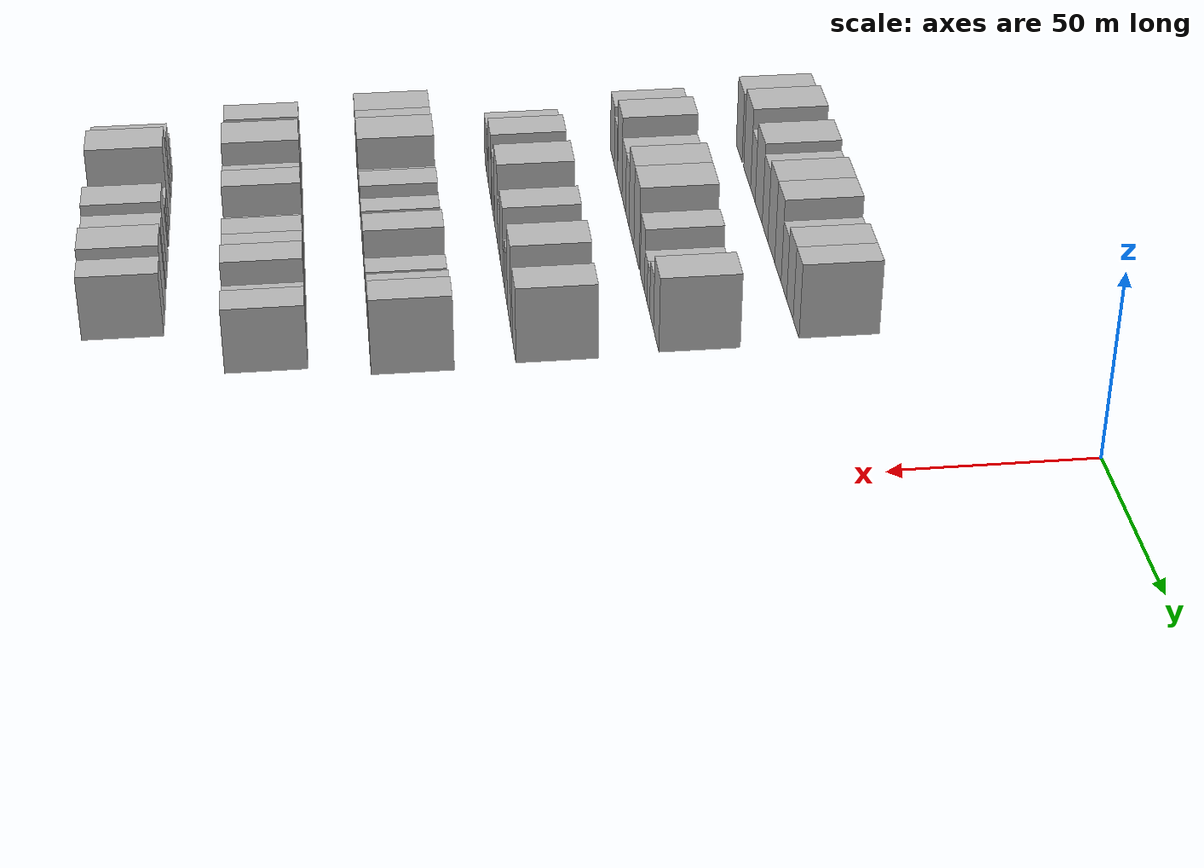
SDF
<sdf version="1.6">
 <world name="default">
  <model name="building_45">
   <static>1</static>
   <pose>50.0000 -151.4031 0 0.000000 0.000000 0.000000</pose>
   <link name="link">
    <pose>0 0 10.50 0 0 0</pose>
    <collision name="collision"><geometry><box><size>20.0000 10.0521 21.0000</size></box></geometry></collision>
    <visual name="visual">
     <cast_shadows>0</cast_shadows>
     <geometry><box><size>20.0000 10.0521 21.0000</size></box></geometry>
     <material>
      <script>
       <uri>model://HANNAS_wall/materials/scripts</uri>
       <uri>model://HANNAS_wall/materials/textures</uri>
       <name>vrc/HANNAS_wall</name>
      </script>
     </material>
    </visual>
   </link>
  </model>
  <model name="building_46">
   <static>1</static>
   <pose>50.0000 -137.5196 0 0.000000 0.000000 0.000000</pose>
   <link name="link">
    <pose>0 0 12.00 0 0 0</pose>
    <collision name="collision"><geometry><box><size>20.0000 11.7151 24.0000</size></box></geometry></collision>
    <visual name="visual">
     <cast_shadows>0</cast_shadows>
     <geometry><box><size>20.0000 11.7151 24.0000</size></box></geometry>
     <material>
      <script>
       <uri>model://HANNAS_wall/materials/scripts</uri>
       <uri>model://HANNAS_wall/materials/textures</uri>
       <name>vrc/HANNAS_wall</name>
      </script>
     </material>
    </visual>
   </link>
  </model>
  <model name="building_47">
   <static>1</static>
   <pose>50.0000 -127.8627 0 0.000000 0.000000 0.000000</pose>
   <link name="link">
    <pose>0 0 9.00 0 0 0</pose>
    <collision name="collision"><geometry><box><size>20.0000 7.5986 18.0000</size></box></geometry></collision>
    <visual name="visual">
     <cast_shadows>0</cast_shadows>
     <geometry><box><size>20.0000 7.5986 18.0000</size></box></geometry>
     <material>
      <script>
       <uri>model://HANNAS_wall/materials/scripts</uri>
       <uri>model://HANNAS_wall/materials/textures</uri>
       <name>vrc/HANNAS_wall</name>
      </script>
     </material>
    </visual>
   </link>
  </model>
  <model name="building_48">
   <static>1</static>
   <pose>50.0000 -118.3057 0 0.000000 0.000000 0.000000</pose>
   <link name="link">
    <pose>0 0 12.00 0 0 0</pose>
    <collision name="collision"><geometry><box><size>20.0000 11.5153 24.0000</size></box></geometry></collision>
    <visual name="visual">
     <cast_shadows>0</cast_shadows>
     <geometry><box><size>20.0000 11.5153 24.0000</size></box></geometry>
     <material>
      <script>
       <uri>model://HANNAS_wall/materials/scripts</uri>
       <uri>model://HANNAS_wall/materials/textures</uri>
       <name>vrc/HANNAS_wall</name>
      </script>
     </material>
    </visual>
   </link>
  </model>
  <model name="building_49">
   <static>1</static>
   <pose>50.0000 -108.0683 0 0.000000 0.000000 0.000000</pose>
   <link name="link">
    <pose>0 0 10.50 0 0 0</pose>
    <collision name="collision"><geometry><box><size>20.0000 8.9596 21.0000</size></box></geometry></collision>
    <visual name="visual">
     <cast_shadows>0</cast_shadows>
     <geometry><box><size>20.0000 8.9596 21.0000</size></box></geometry>
     <material>
      <script>
       <uri>model://HANNAS_wall/materials/scripts</uri>
       <uri>model://HANNAS_wall/materials/textures</uri>
       <name>vrc/HANNAS_wall</name>
      </script>
     </material>
    </visual>
   </link>
  </model>
  <model name="building_50">
   <static>1</static>
   <pose>50.0000 -98.2909 0 0.000000 0.000000 0.000000</pose>
   <link name="link">
    <pose>0 0 12.00 0 0 0</pose>
    <collision name="collision"><geometry><box><size>20.0000 10.5951 24.0000</size></box></geometry></collision>
    <visual name="visual">
     <cast_shadows>0</cast_shadows>
     <geometry><box><size>20.0000 10.5951 24.0000</size></box></geometry>
     <material>
      <script>
       <uri>model://HANNAS_wall/materials/scripts</uri>
       <uri>model://HANNAS_wall/materials/textures</uri>
       <name>vrc/HANNAS_wall</name>
      </script>
     </material>
    </visual>
   </link>
  </model>
  <model name="building_51">
   <static>1</static>
   <pose>50.0000 -88.1303 0 0.000000 0.000000 0.000000</pose>
   <link name="link">
    <pose>0 0 12.00 0 0 0</pose>
    <collision name="collision"><geometry><box><size>20.0000 9.7262 24.0000</size></box></geometry></collision>
    <visual name="visual">
     <cast_shadows>0</cast_shadows>
     <geometry><box><size>20.0000 9.7262 24.0000</size></box></geometry>
     <material>
      <script>
       <uri>model://HANNAS_wall/materials/scripts</uri>
       <uri>model://HANNAS_wall/materials/textures</uri>
       <name>vrc/HANNAS_wall</name>
      </script>
     </material>
    </visual>
   </link>
  </model>
  <model name="building_52">
   <static>1</static>
   <pose>50.0000 -79.1546 0 0.000000 0.000000 0.000000</pose>
   <link name="link">
    <pose>0 0 9.00 0 0 0</pose>
    <collision name="collision"><geometry><box><size>20.0000 8.2252 18.0000</size></box></geometry></collision>
    <visual name="visual">
     <cast_shadows>0</cast_shadows>
     <geometry><box><size>20.0000 8.2252 18.0000</size></box></geometry>
     <material>
      <script>
       <uri>model://HANNAS_wall/materials/scripts</uri>
       <uri>model://HANNAS_wall/materials/textures</uri>
       <name>vrc/HANNAS_wall</name>
      </script>
     </material>
    </visual>
   </link>
  </model>
  <model name="building_53">
   <static>1</static>
   <pose>50.0000 -70.3270 0 0.000000 0.000000 0.000000</pose>
   <link name="link">
    <pose>0 0 10.50 0 0 0</pose>
    <collision name="collision"><geometry><box><size>20.0000 9.4300 21.0000</size></box></geometry></collision>
    <visual name="visual">
     <cast_shadows>0</cast_shadows>
     <geometry><box><size>20.0000 9.4300 21.0000</size></box></geometry>
     <material>
      <script>
       <uri>model://HANNAS_wall/materials/scripts</uri>
       <uri>model://HANNAS_wall/materials/textures</uri>
       <name>vrc/HANNAS_wall</name>
      </script>
     </material>
    </visual>
   </link>
  </model>
  <model name="building_54">
   <static>1</static>
   <pose>50.0000 -61.3829 0 0.000000 0.000000 0.000000</pose>
   <link name="link">
    <pose>0 0 10.50 0 0 0</pose>
    <collision name="collision"><geometry><box><size>20.0000 8.4582 21.0000</size></box></geometry></collision>
    <visual name="visual">
     <cast_shadows>0</cast_shadows>
     <geometry><box><size>20.0000 8.4582 21.0000</size></box></geometry>
     <material>
      <script>
       <uri>model://HANNAS_wall/materials/scripts</uri>
       <uri>model://HANNAS_wall/materials/textures</uri>
       <name>vrc/HANNAS_wall</name>
      </script>
     </material>
    </visual>
   </link>
  </model>
  <model name="building_168">
   <static>1</static>
   <pose>85.0000 -152.6361 0 0.000000 0.000000 0.000000</pose>
   <link name="link">
    <pose>0 0 9.00 0 0 0</pose>
    <collision name="collision"><geometry><box><size>20.0000 8.8853 18.0000</size></box></geometry></collision>
    <visual name="visual">
     <cast_shadows>0</cast_shadows>
     <geometry><box><size>20.0000 8.8853 18.0000</size></box></geometry>
     <material>
      <script>
       <uri>model://HANNAS_wall/materials/scripts</uri>
       <uri>model://HANNAS_wall/materials/textures</uri>
       <name>vrc/HANNAS_wall</name>
      </script>
     </material>
    </visual>
   </link>
  </model>
  <model name="building_169">
   <static>1</static>
   <pose>85.0000 -144.8774 0 0.000000 0.000000 0.000000</pose>
   <link name="link">
    <pose>0 0 7.50 0 0 0</pose>
    <collision name="collision"><geometry><box><size>20.0000 6.6321 15.0000</size></box></geometry></collision>
    <visual name="visual">
     <cast_shadows>0</cast_shadows>
     <geometry><box><size>20.0000 6.6321 15.0000</size></box></geometry>
     <material>
      <script>
       <uri>model://HANNAS_wall/materials/scripts</uri>
       <uri>model://HANNAS_wall/materials/textures</uri>
       <name>vrc/HANNAS_wall</name>
      </script>
     </material>
    </visual>
   </link>
  </model>
  <model name="building_170">
   <static>1</static>
   <pose>85.0000 -135.5276 0 0.000000 0.000000 0.000000</pose>
   <link name="link">
    <pose>0 0 12.00 0 0 0</pose>
    <collision name="collision"><geometry><box><size>20.0000 10.0675 24.0000</size></box></geometry></collision>
    <visual name="visual">
     <cast_shadows>0</cast_shadows>
     <geometry><box><size>20.0000 10.0675 24.0000</size></box></geometry>
     <material>
      <script>
       <uri>model://HANNAS_wall/materials/scripts</uri>
       <uri>model://HANNAS_wall/materials/textures</uri>
       <name>vrc/HANNAS_wall</name>
      </script>
     </material>
    </visual>
   </link>
  </model>
  <model name="building_171">
   <static>1</static>
   <pose>85.0000 -126.3162 0 0.000000 0.000000 0.000000</pose>
   <link name="link">
    <pose>0 0 9.00 0 0 0</pose>
    <collision name="collision"><geometry><box><size>20.0000 8.3554 18.0000</size></box></geometry></collision>
    <visual name="visual">
     <cast_shadows>0</cast_shadows>
     <geometry><box><size>20.0000 8.3554 18.0000</size></box></geometry>
     <material>
      <script>
       <uri>model://HANNAS_wall/materials/scripts</uri>
       <uri>model://HANNAS_wall/materials/textures</uri>
       <name>vrc/HANNAS_wall</name>
      </script>
     </material>
    </visual>
   </link>
  </model>
  <model name="building_172">
   <static>1</static>
   <pose>85.0000 -118.4381 0 0.000000 0.000000 0.000000</pose>
   <link name="link">
    <pose>0 0 9.00 0 0 0</pose>
    <collision name="collision"><geometry><box><size>20.0000 7.4008 18.0000</size></box></geometry></collision>
    <visual name="visual">
     <cast_shadows>0</cast_shadows>
     <geometry><box><size>20.0000 7.4008 18.0000</size></box></geometry>
     <material>
      <script>
       <uri>model://HANNAS_wall/materials/scripts</uri>
       <uri>model://HANNAS_wall/materials/textures</uri>
       <name>vrc/HANNAS_wall</name>
      </script>
     </material>
    </visual>
   </link>
  </model>
  <model name="building_173">
   <static>1</static>
   <pose>85.0000 -109.5974 0 0.000000 0.000000 0.000000</pose>
   <link name="link">
    <pose>0 0 12.00 0 0 0</pose>
    <collision name="collision"><geometry><box><size>20.0000 10.2807 24.0000</size></box></geometry></collision>
    <visual name="visual">
     <cast_shadows>0</cast_shadows>
     <geometry><box><size>20.0000 10.2807 24.0000</size></box></geometry>
     <material>
      <script>
       <uri>model://HANNAS_wall/materials/scripts</uri>
       <uri>model://HANNAS_wall/materials/textures</uri>
       <name>vrc/HANNAS_wall</name>
      </script>
     </material>
    </visual>
   </link>
  </model>
  <model name="building_174">
   <static>1</static>
   <pose>85.0000 -98.7378 0 0.000000 0.000000 0.000000</pose>
   <link name="link">
    <pose>0 0 12.00 0 0 0</pose>
    <collision name="collision"><geometry><box><size>20.0000 11.4384 24.0000</size></box></geometry></collision>
    <visual name="visual">
     <cast_shadows>0</cast_shadows>
     <geometry><box><size>20.0000 11.4384 24.0000</size></box></geometry>
     <material>
      <script>
       <uri>model://HANNAS_wall/materials/scripts</uri>
       <uri>model://HANNAS_wall/materials/textures</uri>
       <name>vrc/HANNAS_wall</name>
      </script>
     </material>
    </visual>
   </link>
  </model>
  <model name="building_175">
   <static>1</static>
   <pose>85.0000 -86.7963 0 0.000000 0.000000 0.000000</pose>
   <link name="link">
    <pose>0 0 9.00 0 0 0</pose>
    <collision name="collision"><geometry><box><size>20.0000 8.4447 18.0000</size></box></geometry></collision>
    <visual name="visual">
     <cast_shadows>0</cast_shadows>
     <geometry><box><size>20.0000 8.4447 18.0000</size></box></geometry>
     <material>
      <script>
       <uri>model://HANNAS_wall/materials/scripts</uri>
       <uri>model://HANNAS_wall/materials/textures</uri>
       <name>vrc/HANNAS_wall</name>
      </script>
     </material>
    </visual>
   </link>
  </model>
  <model name="building_176">
   <static>1</static>
   <pose>85.0000 -79.9591 0 0.000000 0.000000 0.000000</pose>
   <link name="link">
    <pose>0 0 6.00 0 0 0</pose>
    <collision name="collision"><geometry><box><size>20.0000 5.2295 12.0000</size></box></geometry></collision>
    <visual name="visual">
     <cast_shadows>0</cast_shadows>
     <geometry><box><size>20.0000 5.2295 12.0000</size></box></geometry>
     <material>
      <script>
       <uri>model://HANNAS_wall/materials/scripts</uri>
       <uri>model://HANNAS_wall/materials/textures</uri>
       <name>vrc/HANNAS_wall</name>
      </script>
     </material>
    </visual>
   </link>
  </model>
  <model name="building_177">
   <static>1</static>
   <pose>85.0000 -74.8012 0 0.000000 0.000000 0.000000</pose>
   <link name="link">
    <pose>0 0 6.00 0 0 0</pose>
    <collision name="collision"><geometry><box><size>20.0000 5.0864 12.0000</size></box></geometry></collision>
    <visual name="visual">
     <cast_shadows>0</cast_shadows>
     <geometry><box><size>20.0000 5.0864 12.0000</size></box></geometry>
     <material>
      <script>
       <uri>model://HANNAS_wall/materials/scripts</uri>
       <uri>model://HANNAS_wall/materials/textures</uri>
       <name>vrc/HANNAS_wall</name>
      </script>
     </material>
    </visual>
   </link>
  </model>
  <model name="building_178">
   <static>1</static>
   <pose>85.0000 -68.5260 0 0.000000 0.000000 0.000000</pose>
   <link name="link">
    <pose>0 0 7.50 0 0 0</pose>
    <collision name="collision"><geometry><box><size>20.0000 7.4639 15.0000</size></box></geometry></collision>
    <visual name="visual">
     <cast_shadows>0</cast_shadows>
     <geometry><box><size>20.0000 7.4639 15.0000</size></box></geometry>
     <material>
      <script>
       <uri>model://HANNAS_wall/materials/scripts</uri>
       <uri>model://HANNAS_wall/materials/textures</uri>
       <name>vrc/HANNAS_wall</name>
      </script>
     </material>
    </visual>
   </link>
  </model>
  <model name="building_179">
   <static>1</static>
   <pose>85.0000 -59.6368 0 0.000000 0.000000 0.000000</pose>
   <link name="link">
    <pose>0 0 10.50 0 0 0</pose>
    <collision name="collision"><geometry><box><size>20.0000 10.3146 21.0000</size></box></geometry></collision>
    <visual name="visual">
     <cast_shadows>0</cast_shadows>
     <geometry><box><size>20.0000 10.3146 21.0000</size></box></geometry>
     <material>
      <script>
       <uri>model://HANNAS_wall/materials/scripts</uri>
       <uri>model://HANNAS_wall/materials/textures</uri>
       <name>vrc/HANNAS_wall</name>
      </script>
     </material>
    </visual>
   </link>
  </model>
  <model name="building_302">
   <static>1</static>
   <pose>120.0000 -150.2510 0 0.000000 0.000000 0.000000</pose>
   <link name="link">
    <pose>0 0 7.50 0 0 0</pose>
    <collision name="collision"><geometry><box><size>20.0000 7.4345 15.0000</size></box></geometry></collision>
    <visual name="visual">
     <cast_shadows>0</cast_shadows>
     <geometry><box><size>20.0000 7.4345 15.0000</size></box></geometry>
     <material>
      <script>
       <uri>model://HANNAS_wall/materials/scripts</uri>
       <uri>model://HANNAS_wall/materials/textures</uri>
       <name>vrc/HANNAS_wall</name>
      </script>
     </material>
    </visual>
   </link>
  </model>
  <model name="building_303">
   <static>1</static>
   <pose>120.0000 -143.4883 0 0.000000 0.000000 0.000000</pose>
   <link name="link">
    <pose>0 0 7.50 0 0 0</pose>
    <collision name="collision"><geometry><box><size>20.0000 6.0909 15.0000</size></box></geometry></collision>
    <visual name="visual">
     <cast_shadows>0</cast_shadows>
     <geometry><box><size>20.0000 6.0909 15.0000</size></box></geometry>
     <material>
      <script>
       <uri>model://HANNAS_wall/materials/scripts</uri>
       <uri>model://HANNAS_wall/materials/textures</uri>
       <name>vrc/HANNAS_wall</name>
      </script>
     </material>
    </visual>
   </link>
  </model>
  <model name="building_304">
   <static>1</static>
   <pose>120.0000 -134.7921 0 0.000000 0.000000 0.000000</pose>
   <link name="link">
    <pose>0 0 10.50 0 0 0</pose>
    <collision name="collision"><geometry><box><size>20.0000 9.3015 21.0000</size></box></geometry></collision>
    <visual name="visual">
     <cast_shadows>0</cast_shadows>
     <geometry><box><size>20.0000 9.3015 21.0000</size></box></geometry>
     <material>
      <script>
       <uri>model://HANNAS_wall/materials/scripts</uri>
       <uri>model://HANNAS_wall/materials/textures</uri>
       <name>vrc/HANNAS_wall</name>
      </script>
     </material>
    </visual>
   </link>
  </model>
  <model name="building_305">
   <static>1</static>
   <pose>120.0000 -124.3513 0 0.000000 0.000000 0.000000</pose>
   <link name="link">
    <pose>0 0 9.00 0 0 0</pose>
    <collision name="collision"><geometry><box><size>20.0000 7.5800 18.0000</size></box></geometry></collision>
    <visual name="visual">
     <cast_shadows>0</cast_shadows>
     <geometry><box><size>20.0000 7.5800 18.0000</size></box></geometry>
     <material>
      <script>
       <uri>model://HANNAS_wall/materials/scripts</uri>
       <uri>model://HANNAS_wall/materials/textures</uri>
       <name>vrc/HANNAS_wall</name>
      </script>
     </material>
    </visual>
   </link>
  </model>
  <model name="building_306">
   <static>1</static>
   <pose>120.0000 -114.0616 0 0.000000 0.000000 0.000000</pose>
   <link name="link">
    <pose>0 0 12.00 0 0 0</pose>
    <collision name="collision"><geometry><box><size>20.0000 10.9993 24.0000</size></box></geometry></collision>
    <visual name="visual">
     <cast_shadows>0</cast_shadows>
     <geometry><box><size>20.0000 10.9993 24.0000</size></box></geometry>
     <material>
      <script>
       <uri>model://HANNAS_wall/materials/scripts</uri>
       <uri>model://HANNAS_wall/materials/textures</uri>
       <name>vrc/HANNAS_wall</name>
      </script>
     </material>
    </visual>
   </link>
  </model>
  <model name="building_307">
   <static>1</static>
   <pose>120.0000 -104.8306 0 0.000000 0.000000 0.000000</pose>
   <link name="link">
    <pose>0 0 7.50 0 0 0</pose>
    <collision name="collision"><geometry><box><size>20.0000 7.4629 15.0000</size></box></geometry></collision>
    <visual name="visual">
     <cast_shadows>0</cast_shadows>
     <geometry><box><size>20.0000 7.4629 15.0000</size></box></geometry>
     <material>
      <script>
       <uri>model://HANNAS_wall/materials/scripts</uri>
       <uri>model://HANNAS_wall/materials/textures</uri>
       <name>vrc/HANNAS_wall</name>
      </script>
     </material>
    </visual>
   </link>
  </model>
  <model name="building_308">
   <static>1</static>
   <pose>120.0000 -96.4020 0 0.000000 0.000000 0.000000</pose>
   <link name="link">
    <pose>0 0 10.50 0 0 0</pose>
    <collision name="collision"><geometry><box><size>20.0000 9.3943 21.0000</size></box></geometry></collision>
    <visual name="visual">
     <cast_shadows>0</cast_shadows>
     <geometry><box><size>20.0000 9.3943 21.0000</size></box></geometry>
     <material>
      <script>
       <uri>model://HANNAS_wall/materials/scripts</uri>
       <uri>model://HANNAS_wall/materials/textures</uri>
       <name>vrc/HANNAS_wall</name>
      </script>
     </material>
    </visual>
   </link>
  </model>
  <model name="building_309">
   <static>1</static>
   <pose>120.0000 -88.8101 0 0.000000 0.000000 0.000000</pose>
   <link name="link">
    <pose>0 0 6.00 0 0 0</pose>
    <collision name="collision"><geometry><box><size>20.0000 5.7895 12.0000</size></box></geometry></collision>
    <visual name="visual">
     <cast_shadows>0</cast_shadows>
     <geometry><box><size>20.0000 5.7895 12.0000</size></box></geometry>
     <material>
      <script>
       <uri>model://HANNAS_wall/materials/scripts</uri>
       <uri>model://HANNAS_wall/materials/textures</uri>
       <name>vrc/HANNAS_wall</name>
      </script>
     </material>
    </visual>
   </link>
  </model>
  <model name="building_310">
   <static>1</static>
   <pose>120.0000 -82.2947 0 0.000000 0.000000 0.000000</pose>
   <link name="link">
    <pose>0 0 7.50 0 0 0</pose>
    <collision name="collision"><geometry><box><size>20.0000 7.2413 15.0000</size></box></geometry></collision>
    <visual name="visual">
     <cast_shadows>0</cast_shadows>
     <geometry><box><size>20.0000 7.2413 15.0000</size></box></geometry>
     <material>
      <script>
       <uri>model://HANNAS_wall/materials/scripts</uri>
       <uri>model://HANNAS_wall/materials/textures</uri>
       <name>vrc/HANNAS_wall</name>
      </script>
     </material>
    </visual>
   </link>
  </model>
  <model name="building_311">
   <static>1</static>
   <pose>120.0000 -73.3368 0 0.000000 0.000000 0.000000</pose>
   <link name="link">
    <pose>0 0 12.00 0 0 0</pose>
    <collision name="collision"><geometry><box><size>20.0000 10.6745 24.0000</size></box></geometry></collision>
    <visual name="visual">
     <cast_shadows>0</cast_shadows>
     <geometry><box><size>20.0000 10.6745 24.0000</size></box></geometry>
     <material>
      <script>
       <uri>model://HANNAS_wall/materials/scripts</uri>
       <uri>model://HANNAS_wall/materials/textures</uri>
       <name>vrc/HANNAS_wall</name>
      </script>
     </material>
    </visual>
   </link>
  </model>
  <model name="building_312">
   <static>1</static>
   <pose>120.0000 -65.5621 0 0.000000 0.000000 0.000000</pose>
   <link name="link">
    <pose>0 0 6.00 0 0 0</pose>
    <collision name="collision"><geometry><box><size>20.0000 4.8749 12.0000</size></box></geometry></collision>
    <visual name="visual">
     <cast_shadows>0</cast_shadows>
     <geometry><box><size>20.0000 4.8749 12.0000</size></box></geometry>
     <material>
      <script>
       <uri>model://HANNAS_wall/materials/scripts</uri>
       <uri>model://HANNAS_wall/materials/textures</uri>
       <name>vrc/HANNAS_wall</name>
      </script>
     </material>
    </visual>
   </link>
  </model>
  <model name="building_313">
   <static>1</static>
   <pose>120.0000 -58.2092 0 0.000000 0.000000 0.000000</pose>
   <link name="link">
    <pose>0 0 10.50 0 0 0</pose>
    <collision name="collision"><geometry><box><size>20.0000 9.8310 21.0000</size></box></geometry></collision>
    <visual name="visual">
     <cast_shadows>0</cast_shadows>
     <geometry><box><size>20.0000 9.8310 21.0000</size></box></geometry>
     <material>
      <script>
       <uri>model://HANNAS_wall/materials/scripts</uri>
       <uri>model://HANNAS_wall/materials/textures</uri>
       <name>vrc/HANNAS_wall</name>
      </script>
     </material>
    </visual>
   </link>
  </model>
  <model name="building_431">
   <static>1</static>
   <pose>155.0000 -152.2879 0 0.000000 0.000000 0.000000</pose>
   <link name="link">
    <pose>0 0 10.50 0 0 0</pose>
    <collision name="collision"><geometry><box><size>20.0000 9.7107 21.0000</size></box></geometry></collision>
    <visual name="visual">
     <cast_shadows>0</cast_shadows>
     <geometry><box><size>20.0000 9.7107 21.0000</size></box></geometry>
     <material>
      <script>
       <uri>model://HANNAS_wall/materials/scripts</uri>
       <uri>model://HANNAS_wall/materials/textures</uri>
       <name>vrc/HANNAS_wall</name>
      </script>
     </material>
    </visual>
   </link>
  </model>
  <model name="building_432">
   <static>1</static>
   <pose>155.0000 -142.5782 0 0.000000 0.000000 0.000000</pose>
   <link name="link">
    <pose>0 0 10.50 0 0 0</pose>
    <collision name="collision"><geometry><box><size>20.0000 9.7086 21.0000</size></box></geometry></collision>
    <visual name="visual">
     <cast_shadows>0</cast_shadows>
     <geometry><box><size>20.0000 9.7086 21.0000</size></box></geometry>
     <material>
      <script>
       <uri>model://HANNAS_wall/materials/scripts</uri>
       <uri>model://HANNAS_wall/materials/textures</uri>
       <name>vrc/HANNAS_wall</name>
      </script>
     </material>
    </visual>
   </link>
  </model>
  <model name="building_433">
   <static>1</static>
   <pose>155.0000 -131.8184 0 0.000000 0.000000 0.000000</pose>
   <link name="link">
    <pose>0 0 12.00 0 0 0</pose>
    <collision name="collision"><geometry><box><size>20.0000 11.8111 24.0000</size></box></geometry></collision>
    <visual name="visual">
     <cast_shadows>0</cast_shadows>
     <geometry><box><size>20.0000 11.8111 24.0000</size></box></geometry>
     <material>
      <script>
       <uri>model://HANNAS_wall/materials/scripts</uri>
       <uri>model://HANNAS_wall/materials/textures</uri>
       <name>vrc/HANNAS_wall</name>
      </script>
     </material>
    </visual>
   </link>
  </model>
  <model name="building_434">
   <static>1</static>
   <pose>155.0000 -122.7919 0 0.000000 0.000000 0.000000</pose>
   <link name="link">
    <pose>0 0 7.50 0 0 0</pose>
    <collision name="collision"><geometry><box><size>20.0000 6.2419 15.0000</size></box></geometry></collision>
    <visual name="visual">
     <cast_shadows>0</cast_shadows>
     <geometry><box><size>20.0000 6.2419 15.0000</size></box></geometry>
     <material>
      <script>
       <uri>model://HANNAS_wall/materials/scripts</uri>
       <uri>model://HANNAS_wall/materials/textures</uri>
       <name>vrc/HANNAS_wall</name>
      </script>
     </material>
    </visual>
   </link>
  </model>
  <model name="building_435">
   <static>1</static>
   <pose>155.0000 -115.6725 0 0.000000 0.000000 0.000000</pose>
   <link name="link">
    <pose>0 0 9.00 0 0 0</pose>
    <collision name="collision"><geometry><box><size>20.0000 7.9969 18.0000</size></box></geometry></collision>
    <visual name="visual">
     <cast_shadows>0</cast_shadows>
     <geometry><box><size>20.0000 7.9969 18.0000</size></box></geometry>
     <material>
      <script>
       <uri>model://HANNAS_wall/materials/scripts</uri>
       <uri>model://HANNAS_wall/materials/textures</uri>
       <name>vrc/HANNAS_wall</name>
      </script>
     </material>
    </visual>
   </link>
  </model>
  <model name="building_436">
   <static>1</static>
   <pose>155.0000 -107.3233 0 0.000000 0.000000 0.000000</pose>
   <link name="link">
    <pose>0 0 7.50 0 0 0</pose>
    <collision name="collision"><geometry><box><size>20.0000 6.7014 15.0000</size></box></geometry></collision>
    <visual name="visual">
     <cast_shadows>0</cast_shadows>
     <geometry><box><size>20.0000 6.7014 15.0000</size></box></geometry>
     <material>
      <script>
       <uri>model://HANNAS_wall/materials/scripts</uri>
       <uri>model://HANNAS_wall/materials/textures</uri>
       <name>vrc/HANNAS_wall</name>
      </script>
     </material>
    </visual>
   </link>
  </model>
  <model name="building_437">
   <static>1</static>
   <pose>155.0000 -101.2683 0 0.000000 0.000000 0.000000</pose>
   <link name="link">
    <pose>0 0 6.00 0 0 0</pose>
    <collision name="collision"><geometry><box><size>20.0000 5.4087 12.0000</size></box></geometry></collision>
    <visual name="visual">
     <cast_shadows>0</cast_shadows>
     <geometry><box><size>20.0000 5.4087 12.0000</size></box></geometry>
     <material>
      <script>
       <uri>model://HANNAS_wall/materials/scripts</uri>
       <uri>model://HANNAS_wall/materials/textures</uri>
       <name>vrc/HANNAS_wall</name>
      </script>
     </material>
    </visual>
   </link>
  </model>
  <model name="building_438">
   <static>1</static>
   <pose>155.0000 -95.5734 0 0.000000 0.000000 0.000000</pose>
   <link name="link">
    <pose>0 0 6.00 0 0 0</pose>
    <collision name="collision"><geometry><box><size>20.0000 5.9810 12.0000</size></box></geometry></collision>
    <visual name="visual">
     <cast_shadows>0</cast_shadows>
     <geometry><box><size>20.0000 5.9810 12.0000</size></box></geometry>
     <material>
      <script>
       <uri>model://HANNAS_wall/materials/scripts</uri>
       <uri>model://HANNAS_wall/materials/textures</uri>
       <name>vrc/HANNAS_wall</name>
      </script>
     </material>
    </visual>
   </link>
  </model>
  <model name="building_439">
   <static>1</static>
   <pose>155.0000 -88.2928 0 0.000000 0.000000 0.000000</pose>
   <link name="link">
    <pose>0 0 10.50 0 0 0</pose>
    <collision name="collision"><geometry><box><size>20.0000 8.5802 21.0000</size></box></geometry></collision>
    <visual name="visual">
     <cast_shadows>0</cast_shadows>
     <geometry><box><size>20.0000 8.5802 21.0000</size></box></geometry>
     <material>
      <script>
       <uri>model://HANNAS_wall/materials/scripts</uri>
       <uri>model://HANNAS_wall/materials/textures</uri>
       <name>vrc/HANNAS_wall</name>
      </script>
     </material>
    </visual>
   </link>
  </model>
  <model name="building_440">
   <static>1</static>
   <pose>155.0000 -77.5939 0 0.000000 0.000000 0.000000</pose>
   <link name="link">
    <pose>0 0 7.50 0 0 0</pose>
    <collision name="collision"><geometry><box><size>20.0000 6.8176 15.0000</size></box></geometry></collision>
    <visual name="visual">
     <cast_shadows>0</cast_shadows>
     <geometry><box><size>20.0000 6.8176 15.0000</size></box></geometry>
     <material>
      <script>
       <uri>model://HANNAS_wall/materials/scripts</uri>
       <uri>model://HANNAS_wall/materials/textures</uri>
       <name>vrc/HANNAS_wall</name>
      </script>
     </material>
    </visual>
   </link>
  </model>
  <model name="building_441">
   <static>1</static>
   <pose>155.0000 -71.3544 0 0.000000 0.000000 0.000000</pose>
   <link name="link">
    <pose>0 0 6.00 0 0 0</pose>
    <collision name="collision"><geometry><box><size>20.0000 5.6614 12.0000</size></box></geometry></collision>
    <visual name="visual">
     <cast_shadows>0</cast_shadows>
     <geometry><box><size>20.0000 5.6614 12.0000</size></box></geometry>
     <material>
      <script>
       <uri>model://HANNAS_wall/materials/scripts</uri>
       <uri>model://HANNAS_wall/materials/textures</uri>
       <name>vrc/HANNAS_wall</name>
      </script>
     </material>
    </visual>
   </link>
  </model>
  <model name="building_442">
   <static>1</static>
   <pose>155.0000 -64.5673 0 0.000000 0.000000 0.000000</pose>
   <link name="link">
    <pose>0 0 9.00 0 0 0</pose>
    <collision name="collision"><geometry><box><size>20.0000 7.9129 18.0000</size></box></geometry></collision>
    <visual name="visual">
     <cast_shadows>0</cast_shadows>
     <geometry><box><size>20.0000 7.9129 18.0000</size></box></geometry>
     <material>
      <script>
       <uri>model://HANNAS_wall/materials/scripts</uri>
       <uri>model://HANNAS_wall/materials/textures</uri>
       <name>vrc/HANNAS_wall</name>
      </script>
     </material>
    </visual>
   </link>
  </model>
  <model name="building_443">
   <static>1</static>
   <pose>155.0000 -56.1445 0 0.000000 0.000000 0.000000</pose>
   <link name="link">
    <pose>0 0 10.50 0 0 0</pose>
    <collision name="collision"><geometry><box><size>20.0000 8.9327 21.0000</size></box></geometry></collision>
    <visual name="visual">
     <cast_shadows>0</cast_shadows>
     <geometry><box><size>20.0000 8.9327 21.0000</size></box></geometry>
     <material>
      <script>
       <uri>model://HANNAS_wall/materials/scripts</uri>
       <uri>model://HANNAS_wall/materials/textures</uri>
       <name>vrc/HANNAS_wall</name>
      </script>
     </material>
    </visual>
   </link>
  </model>
  <model name="building_556">
   <static>1</static>
   <pose>190.0000 -155.3490 0 0.000000 0.000000 0.000000</pose>
   <link name="link">
    <pose>0 0 9.00 0 0 0</pose>
    <collision name="collision"><geometry><box><size>20.0000 8.4351 18.0000</size></box></geometry></collision>
    <visual name="visual">
     <cast_shadows>0</cast_shadows>
     <geometry><box><size>20.0000 8.4351 18.0000</size></box></geometry>
     <material>
      <script>
       <uri>model://HANNAS_wall/materials/scripts</uri>
       <uri>model://HANNAS_wall/materials/textures</uri>
       <name>vrc/HANNAS_wall</name>
      </script>
     </material>
    </visual>
   </link>
  </model>
  <model name="building_557">
   <static>1</static>
   <pose>190.0000 -147.9889 0 0.000000 0.000000 0.000000</pose>
   <link name="link">
    <pose>0 0 7.50 0 0 0</pose>
    <collision name="collision"><geometry><box><size>20.0000 6.2849 15.0000</size></box></geometry></collision>
    <visual name="visual">
     <cast_shadows>0</cast_shadows>
     <geometry><box><size>20.0000 6.2849 15.0000</size></box></geometry>
     <material>
      <script>
       <uri>model://HANNAS_wall/materials/scripts</uri>
       <uri>model://HANNAS_wall/materials/textures</uri>
       <name>vrc/HANNAS_wall</name>
      </script>
     </material>
    </visual>
   </link>
  </model>
  <model name="building_558">
   <static>1</static>
   <pose>190.0000 -142.1652 0 0.000000 0.000000 0.000000</pose>
   <link name="link">
    <pose>0 0 6.00 0 0 0</pose>
    <collision name="collision"><geometry><box><size>20.0000 5.3625 12.0000</size></box></geometry></collision>
    <visual name="visual">
     <cast_shadows>0</cast_shadows>
     <geometry><box><size>20.0000 5.3625 12.0000</size></box></geometry>
     <material>
      <script>
       <uri>model://HANNAS_wall/materials/scripts</uri>
       <uri>model://HANNAS_wall/materials/textures</uri>
       <name>vrc/HANNAS_wall</name>
      </script>
     </material>
    </visual>
   </link>
  </model>
  <model name="building_559">
   <static>1</static>
   <pose>190.0000 -132.7992 0 0.000000 0.000000 0.000000</pose>
   <link name="link">
    <pose>0 0 12.00 0 0 0</pose>
    <collision name="collision"><geometry><box><size>20.0000 11.3693 24.0000</size></box></geometry></collision>
    <visual name="visual">
     <cast_shadows>0</cast_shadows>
     <geometry><box><size>20.0000 11.3693 24.0000</size></box></geometry>
     <material>
      <script>
       <uri>model://HANNAS_wall/materials/scripts</uri>
       <uri>model://HANNAS_wall/materials/textures</uri>
       <name>vrc/HANNAS_wall</name>
      </script>
     </material>
    </visual>
   </link>
  </model>
  <model name="building_560">
   <static>1</static>
   <pose>190.0000 -122.1430 0 0.000000 0.000000 0.000000</pose>
   <link name="link">
    <pose>0 0 9.00 0 0 0</pose>
    <collision name="collision"><geometry><box><size>20.0000 7.9432 18.0000</size></box></geometry></collision>
    <visual name="visual">
     <cast_shadows>0</cast_shadows>
     <geometry><box><size>20.0000 7.9432 18.0000</size></box></geometry>
     <material>
      <script>
       <uri>model://HANNAS_wall/materials/scripts</uri>
       <uri>model://HANNAS_wall/materials/textures</uri>
       <name>vrc/HANNAS_wall</name>
      </script>
     </material>
    </visual>
   </link>
  </model>
  <model name="building_561">
   <static>1</static>
   <pose>190.0000 -113.9570 0 0.000000 0.000000 0.000000</pose>
   <link name="link">
    <pose>0 0 10.50 0 0 0</pose>
    <collision name="collision"><geometry><box><size>20.0000 8.4286 21.0000</size></box></geometry></collision>
    <visual name="visual">
     <cast_shadows>0</cast_shadows>
     <geometry><box><size>20.0000 8.4286 21.0000</size></box></geometry>
     <material>
      <script>
       <uri>model://HANNAS_wall/materials/scripts</uri>
       <uri>model://HANNAS_wall/materials/textures</uri>
       <name>vrc/HANNAS_wall</name>
      </script>
     </material>
    </visual>
   </link>
  </model>
  <model name="building_562">
   <static>1</static>
   <pose>190.0000 -106.8450 0 0.000000 0.000000 0.000000</pose>
   <link name="link">
    <pose>0 0 6.00 0 0 0</pose>
    <collision name="collision"><geometry><box><size>20.0000 5.7955 12.0000</size></box></geometry></collision>
    <visual name="visual">
     <cast_shadows>0</cast_shadows>
     <geometry><box><size>20.0000 5.7955 12.0000</size></box></geometry>
     <material>
      <script>
       <uri>model://HANNAS_wall/materials/scripts</uri>
       <uri>model://HANNAS_wall/materials/textures</uri>
       <name>vrc/HANNAS_wall</name>
      </script>
     </material>
    </visual>
   </link>
  </model>
  <model name="building_563">
   <static>1</static>
   <pose>190.0000 -101.3784 0 0.000000 0.000000 0.000000</pose>
   <link name="link">
    <pose>0 0 6.00 0 0 0</pose>
    <collision name="collision"><geometry><box><size>20.0000 5.1376 12.0000</size></box></geometry></collision>
    <visual name="visual">
     <cast_shadows>0</cast_shadows>
     <geometry><box><size>20.0000 5.1376 12.0000</size></box></geometry>
     <material>
      <script>
       <uri>model://HANNAS_wall/materials/scripts</uri>
       <uri>model://HANNAS_wall/materials/textures</uri>
       <name>vrc/HANNAS_wall</name>
      </script>
     </material>
    </visual>
   </link>
  </model>
  <model name="building_564">
   <static>1</static>
   <pose>190.0000 -94.9449 0 0.000000 0.000000 0.000000</pose>
   <link name="link">
    <pose>0 0 9.00 0 0 0</pose>
    <collision name="collision"><geometry><box><size>20.0000 7.7294 18.0000</size></box></geometry></collision>
    <visual name="visual">
     <cast_shadows>0</cast_shadows>
     <geometry><box><size>20.0000 7.7294 18.0000</size></box></geometry>
     <material>
      <script>
       <uri>model://HANNAS_wall/materials/scripts</uri>
       <uri>model://HANNAS_wall/materials/textures</uri>
       <name>vrc/HANNAS_wall</name>
      </script>
     </material>
    </visual>
   </link>
  </model>
  <model name="building_565">
   <static>1</static>
   <pose>190.0000 -87.0096 0 0.000000 0.000000 0.000000</pose>
   <link name="link">
    <pose>0 0 9.00 0 0 0</pose>
    <collision name="collision"><geometry><box><size>20.0000 8.1413 18.0000</size></box></geometry></collision>
    <visual name="visual">
     <cast_shadows>0</cast_shadows>
     <geometry><box><size>20.0000 8.1413 18.0000</size></box></geometry>
     <material>
      <script>
       <uri>model://HANNAS_wall/materials/scripts</uri>
       <uri>model://HANNAS_wall/materials/textures</uri>
       <name>vrc/HANNAS_wall</name>
      </script>
     </material>
    </visual>
   </link>
  </model>
  <model name="building_566">
   <static>1</static>
   <pose>190.0000 -76.7161 0 0.000000 0.000000 0.000000</pose>
   <link name="link">
    <pose>0 0 10.50 0 0 0</pose>
    <collision name="collision"><geometry><box><size>20.0000 8.4456 21.0000</size></box></geometry></collision>
    <visual name="visual">
     <cast_shadows>0</cast_shadows>
     <geometry><box><size>20.0000 8.4456 21.0000</size></box></geometry>
     <material>
      <script>
       <uri>model://HANNAS_wall/materials/scripts</uri>
       <uri>model://HANNAS_wall/materials/textures</uri>
       <name>vrc/HANNAS_wall</name>
      </script>
     </material>
    </visual>
   </link>
  </model>
  <model name="building_567">
   <static>1</static>
   <pose>190.0000 -67.9937 0 0.000000 0.000000 0.000000</pose>
   <link name="link">
    <pose>0 0 7.50 0 0 0</pose>
    <collision name="collision"><geometry><box><size>20.0000 6.9994 15.0000</size></box></geometry></collision>
    <visual name="visual">
     <cast_shadows>0</cast_shadows>
     <geometry><box><size>20.0000 6.9994 15.0000</size></box></geometry>
     <material>
      <script>
       <uri>model://HANNAS_wall/materials/scripts</uri>
       <uri>model://HANNAS_wall/materials/textures</uri>
       <name>vrc/HANNAS_wall</name>
      </script>
     </material>
    </visual>
   </link>
  </model>
  <model name="building_568">
   <static>1</static>
   <pose>190.0000 -60.1422 0 0.000000 0.000000 0.000000</pose>
   <link name="link">
    <pose>0 0 9.00 0 0 0</pose>
    <collision name="collision"><geometry><box><size>20.0000 8.7036 18.0000</size></box></geometry></collision>
    <visual name="visual">
     <cast_shadows>0</cast_shadows>
     <geometry><box><size>20.0000 8.7036 18.0000</size></box></geometry>
     <material>
      <script>
       <uri>model://HANNAS_wall/materials/scripts</uri>
       <uri>model://HANNAS_wall/materials/textures</uri>
       <name>vrc/HANNAS_wall</name>
      </script>
     </material>
    </visual>
   </link>
  </model>
  <model name="building_684">
   <static>1</static>
   <pose>225.0000 -153.7243 0 0.000000 0.000000 0.000000</pose>
   <link name="link">
    <pose>0 0 6.00 0 0 0</pose>
    <collision name="collision"><geometry><box><size>20.0000 5.7595 12.0000</size></box></geometry></collision>
    <visual name="visual">
     <cast_shadows>0</cast_shadows>
     <geometry><box><size>20.0000 5.7595 12.0000</size></box></geometry>
     <material>
      <script>
       <uri>model://HANNAS_wall/materials/scripts</uri>
       <uri>model://HANNAS_wall/materials/textures</uri>
       <name>vrc/HANNAS_wall</name>
      </script>
     </material>
    </visual>
   </link>
  </model>
  <model name="building_685">
   <static>1</static>
   <pose>225.0000 -146.9080 0 0.000000 0.000000 0.000000</pose>
   <link name="link">
    <pose>0 0 9.00 0 0 0</pose>
    <collision name="collision"><geometry><box><size>20.0000 7.8731 18.0000</size></box></geometry></collision>
    <visual name="visual">
     <cast_shadows>0</cast_shadows>
     <geometry><box><size>20.0000 7.8731 18.0000</size></box></geometry>
     <material>
      <script>
       <uri>model://HANNAS_wall/materials/scripts</uri>
       <uri>model://HANNAS_wall/materials/textures</uri>
       <name>vrc/HANNAS_wall</name>
      </script>
     </material>
    </visual>
   </link>
  </model>
  <model name="building_686">
   <static>1</static>
   <pose>225.0000 -140.3641 0 0.000000 0.000000 0.000000</pose>
   <link name="link">
    <pose>0 0 6.00 0 0 0</pose>
    <collision name="collision"><geometry><box><size>20.0000 5.2147 12.0000</size></box></geometry></collision>
    <visual name="visual">
     <cast_shadows>0</cast_shadows>
     <geometry><box><size>20.0000 5.2147 12.0000</size></box></geometry>
     <material>
      <script>
       <uri>model://HANNAS_wall/materials/scripts</uri>
       <uri>model://HANNAS_wall/materials/textures</uri>
       <name>vrc/HANNAS_wall</name>
      </script>
     </material>
    </visual>
   </link>
  </model>
  <model name="building_687">
   <static>1</static>
   <pose>225.0000 -132.3163 0 0.000000 0.000000 0.000000</pose>
   <link name="link">
    <pose>0 0 12.00 0 0 0</pose>
    <collision name="collision"><geometry><box><size>20.0000 10.8810 24.0000</size></box></geometry></collision>
    <visual name="visual">
     <cast_shadows>0</cast_shadows>
     <geometry><box><size>20.0000 10.8810 24.0000</size></box></geometry>
     <material>
      <script>
       <uri>model://HANNAS_wall/materials/scripts</uri>
       <uri>model://HANNAS_wall/materials/textures</uri>
       <name>vrc/HANNAS_wall</name>
      </script>
     </material>
    </visual>
   </link>
  </model>
  <model name="building_688">
   <static>1</static>
   <pose>225.0000 -123.9734 0 0.000000 0.000000 0.000000</pose>
   <link name="link">
    <pose>0 0 6.00 0 0 0</pose>
    <collision name="collision"><geometry><box><size>20.0000 5.8049 12.0000</size></box></geometry></collision>
    <visual name="visual">
     <cast_shadows>0</cast_shadows>
     <geometry><box><size>20.0000 5.8049 12.0000</size></box></geometry>
     <material>
      <script>
       <uri>model://HANNAS_wall/materials/scripts</uri>
       <uri>model://HANNAS_wall/materials/textures</uri>
       <name>vrc/HANNAS_wall</name>
      </script>
     </material>
    </visual>
   </link>
  </model>
  <model name="building_689">
   <static>1</static>
   <pose>225.0000 -118.6555 0 0.000000 0.000000 0.000000</pose>
   <link name="link">
    <pose>0 0 6.00 0 0 0</pose>
    <collision name="collision"><geometry><box><size>20.0000 4.8307 12.0000</size></box></geometry></collision>
    <visual name="visual">
     <cast_shadows>0</cast_shadows>
     <geometry><box><size>20.0000 4.8307 12.0000</size></box></geometry>
     <material>
      <script>
       <uri>model://HANNAS_wall/materials/scripts</uri>
       <uri>model://HANNAS_wall/materials/textures</uri>
       <name>vrc/HANNAS_wall</name>
      </script>
     </material>
    </visual>
   </link>
  </model>
  <model name="building_690">
   <static>1</static>
   <pose>225.0000 -108.4183 0 0.000000 0.000000 0.000000</pose>
   <link name="link">
    <pose>0 0 10.50 0 0 0</pose>
    <collision name="collision"><geometry><box><size>20.0000 9.6437 21.0000</size></box></geometry></collision>
    <visual name="visual">
     <cast_shadows>0</cast_shadows>
     <geometry><box><size>20.0000 9.6437 21.0000</size></box></geometry>
     <material>
      <script>
       <uri>model://HANNAS_wall/materials/scripts</uri>
       <uri>model://HANNAS_wall/materials/textures</uri>
       <name>vrc/HANNAS_wall</name>
      </script>
     </material>
    </visual>
   </link>
  </model>
  <model name="building_691">
   <static>1</static>
   <pose>225.0000 -99.5945 0 0.000000 0.000000 0.000000</pose>
   <link name="link">
    <pose>0 0 9.00 0 0 0</pose>
    <collision name="collision"><geometry><box><size>20.0000 8.0039 18.0000</size></box></geometry></collision>
    <visual name="visual">
     <cast_shadows>0</cast_shadows>
     <geometry><box><size>20.0000 8.0039 18.0000</size></box></geometry>
     <material>
      <script>
       <uri>model://HANNAS_wall/materials/scripts</uri>
       <uri>model://HANNAS_wall/materials/textures</uri>
       <name>vrc/HANNAS_wall</name>
      </script>
     </material>
    </visual>
   </link>
  </model>
  <model name="building_692">
   <static>1</static>
   <pose>225.0000 -87.3765 0 0.000000 0.000000 0.000000</pose>
   <link name="link">
    <pose>0 0 10.50 0 0 0</pose>
    <collision name="collision"><geometry><box><size>20.0000 10.4322 21.0000</size></box></geometry></collision>
    <visual name="visual">
     <cast_shadows>0</cast_shadows>
     <geometry><box><size>20.0000 10.4322 21.0000</size></box></geometry>
     <material>
      <script>
       <uri>model://HANNAS_wall/materials/scripts</uri>
       <uri>model://HANNAS_wall/materials/textures</uri>
       <name>vrc/HANNAS_wall</name>
      </script>
     </material>
    </visual>
   </link>
  </model>
  <model name="building_693">
   <static>1</static>
   <pose>225.0000 -78.0786 0 0.000000 0.000000 0.000000</pose>
   <link name="link">
    <pose>0 0 9.00 0 0 0</pose>
    <collision name="collision"><geometry><box><size>20.0000 8.1636 18.0000</size></box></geometry></collision>
    <visual name="visual">
     <cast_shadows>0</cast_shadows>
     <geometry><box><size>20.0000 8.1636 18.0000</size></box></geometry>
     <material>
      <script>
       <uri>model://HANNAS_wall/materials/scripts</uri>
       <uri>model://HANNAS_wall/materials/textures</uri>
       <name>vrc/HANNAS_wall</name>
      </script>
     </material>
    </visual>
   </link>
  </model>
 </world>
</sdf>
